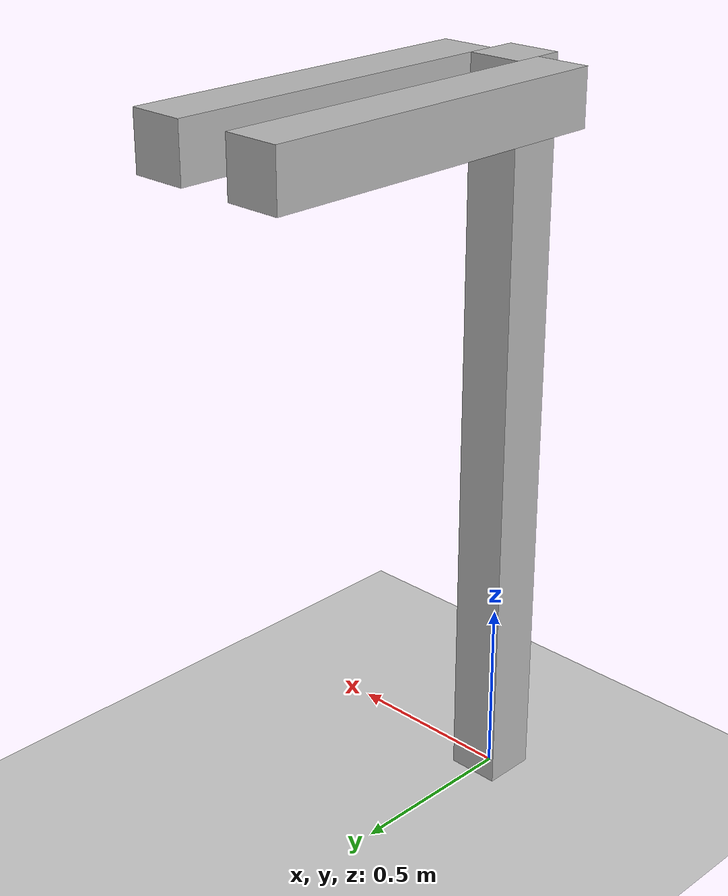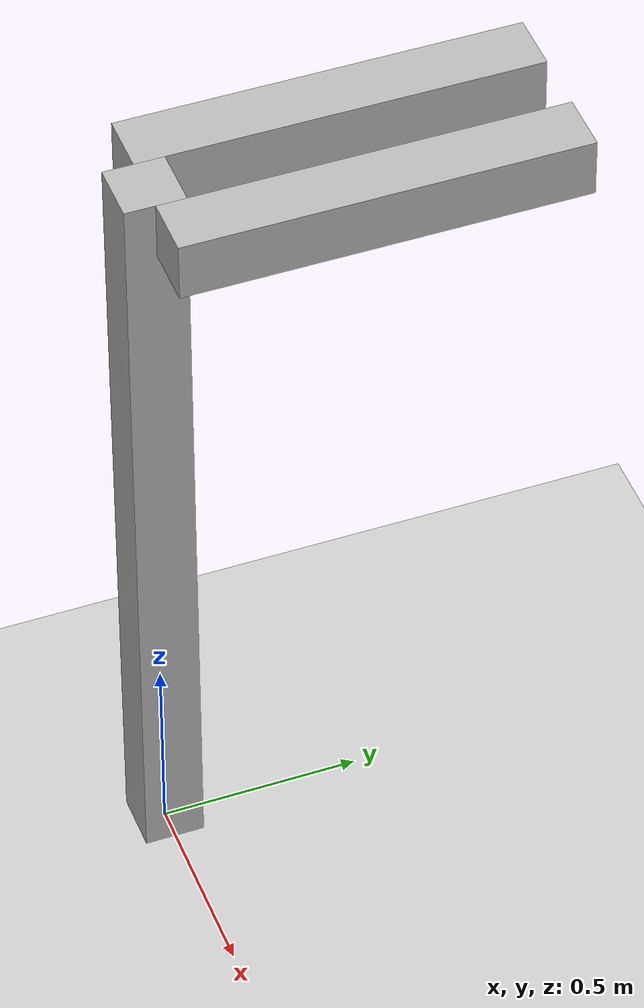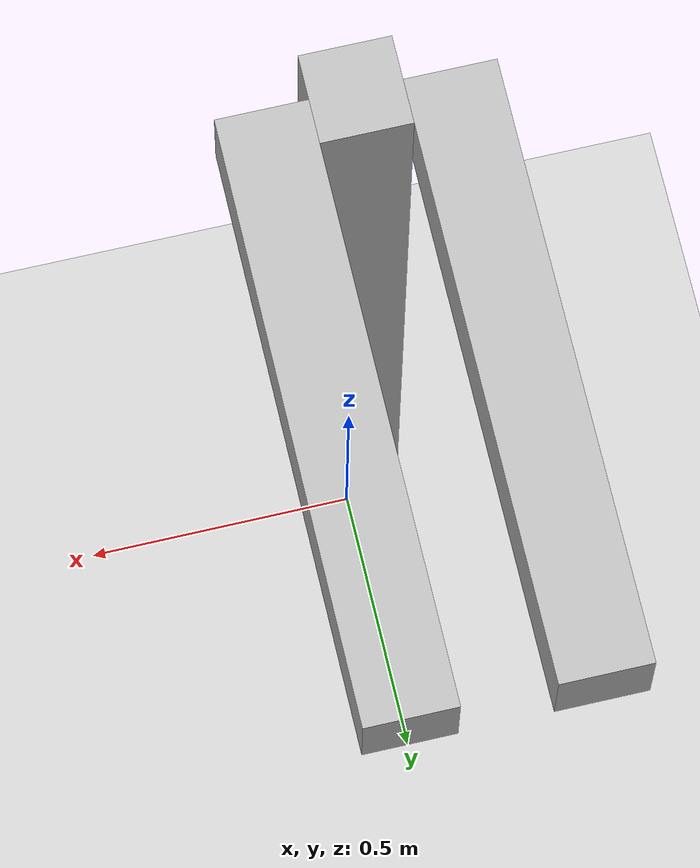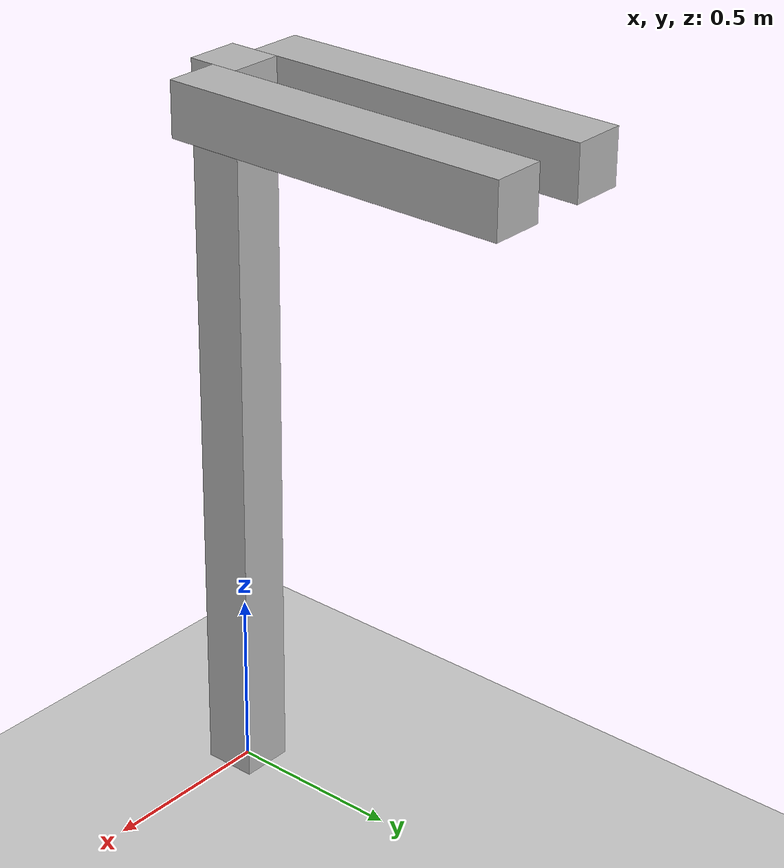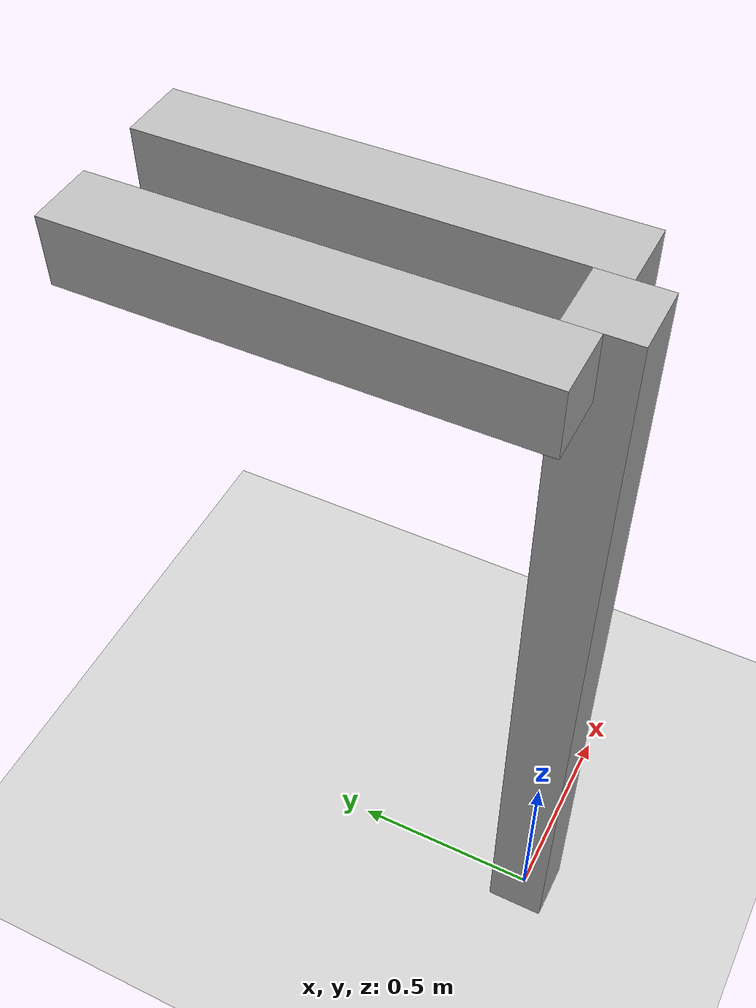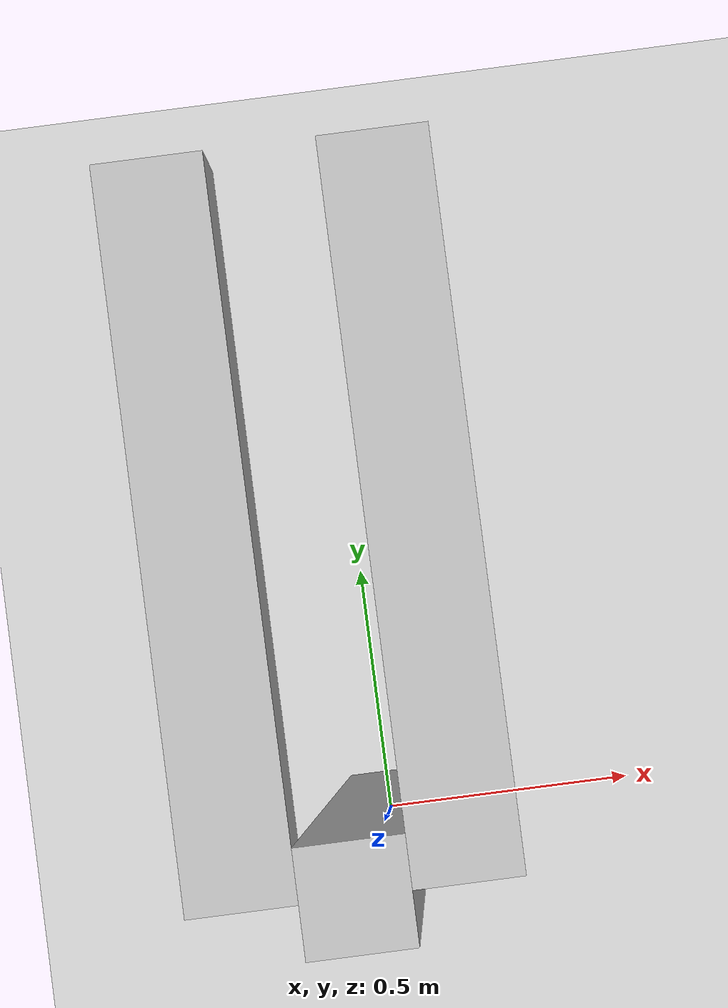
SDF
<?xml version="1.0"?>

<sdf version="1.7">
  <world name="tutorial_controlboard">
    <physics name="1ms" type="ignored">
      <max_step_size>0.001</max_step_size>
      <real_time_factor>1.0</real_time_factor>
    </physics>
    <plugin
      filename="gz-sim-physics-system"
      name="gz::sim::systems::Physics">
    </plugin>
    <plugin
      filename="gz-sim-user-commands-system"
      name="gz::sim::systems::UserCommands">
    </plugin>
    <plugin
      filename="gz-sim-sensors-system"
      name="gz::sim::systems::Sensors">
    </plugin>
    <plugin
      filename="gz-sim-scene-broadcaster-system"
      name="gz::sim::systems::SceneBroadcaster">
    </plugin>

    <light type="directional" name="sun">
      <cast_shadows>true</cast_shadows>
      <pose>0 0 10 0 0 0</pose>
      <diffuse>0.8 0.8 0.8 1</diffuse>
      <specular>0.2 0.2 0.2 1</specular>
      <attenuation>
        <range>1000</range>
        <constant>0.9</constant>
        <linear>0.01</linear>
        <quadratic>0.001</quadratic>
      </attenuation>
      <direction>-0.5 0.1 -0.9</direction>
    </light>

    <model name="ground_plane">
      <static>true</static>
      <link name="link">
        <collision name="collision">
          <geometry>
            <plane>
              <normal>0 0 1</normal>
              <size>100 100</size>
            </plane>
          </geometry>
        </collision>
        <visual name="visual">
          <geometry>
            <plane>
              <normal>0 0 1</normal>
              <size>100 100</size>
            </plane>
          </geometry>
          <material>
            <ambient>0.8 0.8 0.8 1</ambient>
            <diffuse>0.8 0.8 0.8 1</diffuse>
            <specular>0.8 0.8 0.8 1</specular>
          </material>
        </visual>
      </link>
    </model>

    <include>
      <uri>model://coupled_pendulum/model.sdf</uri>
    </include>

  </world>
</sdf>

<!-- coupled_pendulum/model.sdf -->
<sdf version="1.7">

    <model name="coupled_pendulum">
        <joint name="fixed_base" type="revolute">
            <parent>world</parent>
            <child>base_link</child>
            <axis>
                <xyz>1 0 0</xyz>
                <limit>
                    <lower>-5</lower>
                    <upper>5</upper>
                    <effort>100</effort>
                    <velocity>100</velocity>
                </limit>
                <dynamics>
                    <damping>0.0</damping>
                    <spring_reference>0</spring_reference>
                    <spring_stiffness>0.0</spring_stiffness>
                </dynamics>
            </axis>
        </joint>
        <link name='base_link'>
            <inertial>
                <pose>0 0 0 0 0 0</pose>
                <mass>100</mass>
                <inertia>
                    <ixx>1</ixx>
                    <ixy>0</ixy>
                    <ixz>0</ixz>
                    <iyy>1</iyy>
                    <iyz>0</iyz>
                    <izz>1</izz>
                </inertia>
            </inertial>
            <collision name='base_link_fixed_joint_lump__base_collision'>
                <pose>0 0 1 0 0 0</pose>
                <geometry>
                    <box>
                        <size>0.15 0.15 2.15</size>
                    </box>
                </geometry>
            </collision>
            <visual name='base_link_fixed_joint_lump__base_visual'>
                <pose>0 0 1 0 0 0</pose>
                <geometry>
                    <box>
                        <size>0.15 0.15 2.15</size>
                    </box>
                </geometry>
            </visual>
        </link>
        <joint name='upper_joint' type='revolute'>
            <pose relative_to='base_link'>0.15 0 2 -1.5708 0 0</pose>
            <parent>base_link</parent>
            <child>upper_link</child>
            <axis>
                <xyz>1 0 0</xyz>
                <limit>
                    <lower>-5</lower>
                    <upper>5</upper>
                    <effort>100</effort>
                    <velocity>100</velocity>
                </limit>
                <dynamics>
                    <damping>0.0</damping>
                    <spring_reference>0</spring_reference>
                    <spring_stiffness>0.0</spring_stiffness>
                </dynamics>
            </axis>
        </joint>
        <link name='upper_link'>
            <pose relative_to='upper_joint'>0 0 0 0 0 0</pose>
            <self_collide>0</self_collide>
            <inertial>
                <pose>0 0 0.5 0 0 0</pose>
                <mass>1</mass>
                <inertia>
                    <ixx>1.0</ixx>
                    <ixy>0</ixy>
                    <ixz>0</ixz>
                    <iyy>1.0</iyy>
                    <iyz>0</iyz>
                    <izz>1.0</izz>
                </inertia>
            </inertial>
            <collision name='upper_link_collision'>
                <pose>0 0 0.5 0 0 0</pose>
                <geometry>
                    <box>
                        <size>0.15 0.15 1.0</size>
                    </box>
                </geometry>
            </collision>
            <visual name='upper_link_visual'>
                <pose>0 0 0.5 0 0 0</pose>
                <geometry>
                    <box>
                        <size>0.15 0.15 1.0</size>
                    </box>
                </geometry>
            </visual>
        </link>

        <joint name='lower_joint' type='revolute'>
            <pose relative_to='base_link'>-0.15 0 2 -1.5708 0 0</pose>
            <parent>base_link</parent>
            <child>lower_link</child>
            <axis>
                <xyz>1 0 0</xyz>
                <limit>
                    <lower>-5</lower>
                    <upper>5</upper>
                    <effort>100</effort>
                    <velocity>100</velocity>
                </limit>
                <dynamics>
                    <damping>0.0</damping>
                    <spring_reference>0</spring_reference>
                    <spring_stiffness>0.0</spring_stiffness>
                </dynamics>
            </axis>
        </joint>
        <link name='lower_link'>
            <pose relative_to='lower_joint'>0 0 0 0 0 0</pose>
            <self_collide>0</self_collide>
            <inertial>
                <pose>0.0 0 0.5 0 0 0</pose>
                <mass>1</mass>
                <inertia>
                    <ixx>1.0</ixx>
                    <ixy>0</ixy>
                    <ixz>0</ixz>
                    <iyy>1.0</iyy>
                    <iyz>0</iyz>
                    <izz>1.0</izz>
                </inertia>
            </inertial>
            <collision name='lower_link_collision'>
                <pose>0.0 0 0.5 0 0 0</pose>
                <geometry>
                    <box>
                        <size>0.15 0.15 1.0</size>
                    </box>
                </geometry>
            </collision>
            <visual name='lower_link_visual'>
                <pose>0.0 0 0.5 0 0 0</pose>
                <geometry>
                    <box>
                        <size>0.15 0.15 1.0</size>
                    </box>
                </geometry>
            </visual>
        </link>

        <!-- Launch the other YARP devices, in this case a controlBoard_nws_yarp to expose the
        controlboard functionalities via YARP ports -->
        <plugin name="gzyarp::ControlBoard" filename="gz-sim-yarp-controlboard-system">
            <yarpConfigurationFile>
                model://coupled_pendulum/conf/gazebo_controlboard.ini
            </yarpConfigurationFile>
            <initialConfiguration>0.0</initialConfiguration>
        </plugin>
        <plugin name="gzyarp::RobotInterface" filename="gz-sim-yarp-robotinterface-system">
            <yarpRobotInterfaceConfigurationFile>
                model://coupled_pendulum/conf/coupled_pendulum_nws.xml
            </yarpRobotInterfaceConfigurationFile>
        </plugin>
    </model>

</sdf>
